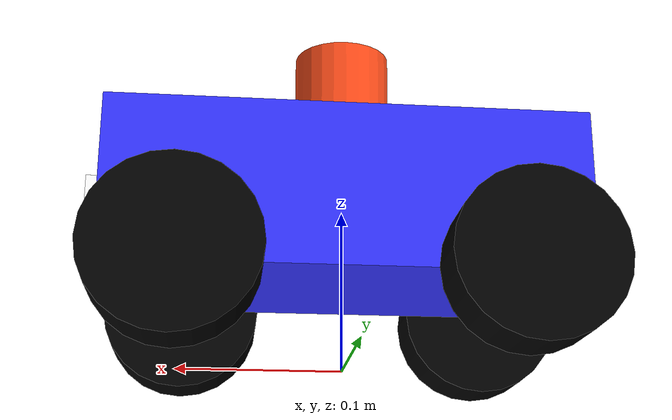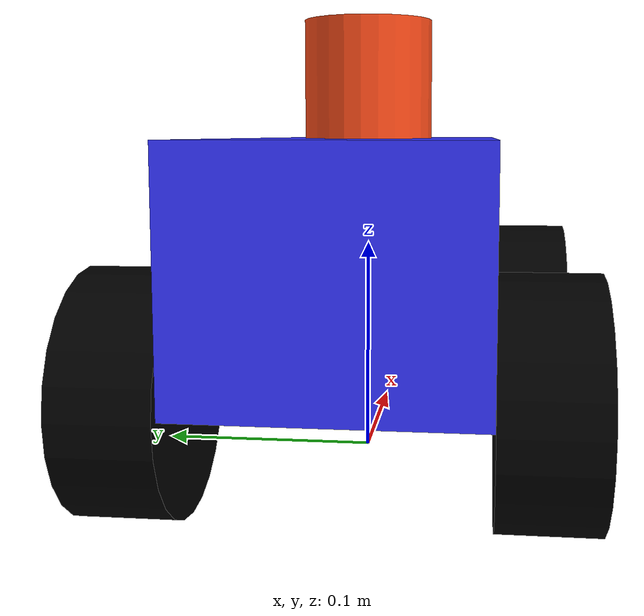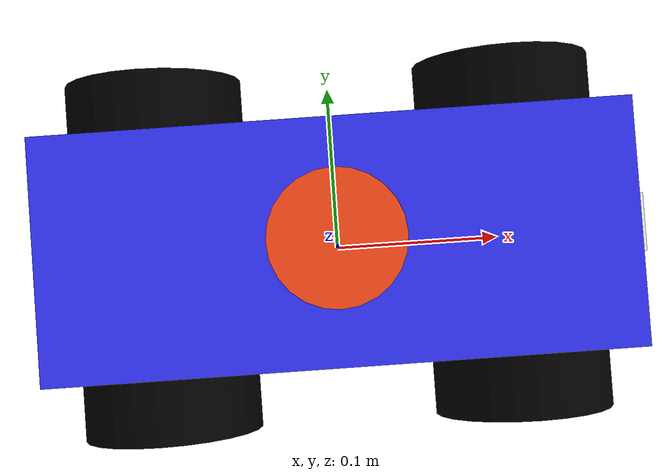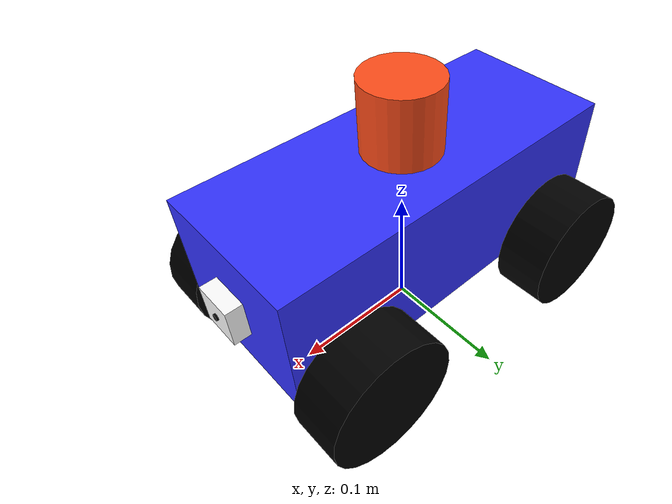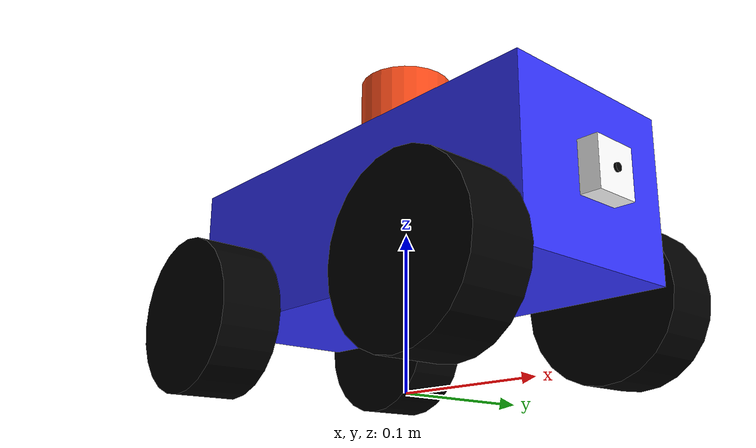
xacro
<?xml version="1.0"?>
<robot name="oskar" xmlns:xacro="http://www.ros.org/wiki/xacro" >

<!-- Ros2_control-->

    <xacro:include filename="colours.xacro" />
    <xacro:include filename="params.xacro" />
    <xacro:include filename="macros.xacro" />
    <xacro:include filename="gazebo.xacro"/>

    <!-- Core Robot Description -->

    <!-- Base Link -->
    <link name="base_link" >
        <visual>
            <geometry>
                <!--mesh filename="$(find oskar_bringup)/meshes/box.dae" /-->
                <box size="0.29 0.12 0.10" />
            </geometry>
            <origin xyz="0 0 0.05" rpy="0 0 0" />
            <material name="blue" />
        </visual>
        <collision>
            <geometry>
                <box size="0.29 0.12 0.10" />
            </geometry>
            <origin xyz="0 0 0.05" rpy="0 0 0" />
        </collision>
        <xacro:default_inertial mass="${base_mass}"/>
    </link>

    <!-- Base Footprint -->
    <link name="base_footprint" />

    <joint name="base_link_joint" type="fixed">
        <parent link="base_footprint"/>
        <child link="base_link"/>
        <origin xyz="0 0 0.05" rpy="0 0 0"/>
    </joint>

<!-- Right Front Wheel Link-->

    <xacro:wheel_link wheel_link_name="left_front_wheel_link"/>

    <joint name="base_left_front_wheel_joint" type="continuous">
        <parent link="base_link"/>
        <child link="left_front_wheel_link"/>
        <origin xyz="0.10 0.08 0" rpy="0 0 0" />
        <axis xyz="0.0 1 0.0"/>
    </joint>

<!-- Right Front Wheel Link-->

    <xacro:wheel_link wheel_link_name="right_front_wheel_link"/>

    <joint name="base_right_front_wheel_joint" type="continuous">
        <parent link="base_link"/>
        <child link="right_front_wheel_link"/>
        <origin xyz="0.10 -0.08 0" rpy="0 0 0" />
        <axis xyz="0.0 1 0.0"/>
    </joint>

<!-- Left Back Wheel Link-->

    <xacro:wheel_link wheel_link_name="left_back_wheel_link"/>

    <joint name="base_left_back_wheel_joint" type="continuous">
        <parent link="base_link"/>
        <child link="left_back_wheel_link"/>
        <origin xyz="-0.10 0.08 0" rpy="0 0 0" />
        <axis xyz="0.0 1 0.0"/>
    </joint>

<!-- Right Back Wheel Link-->

    <xacro:wheel_link wheel_link_name="right_back_wheel_link"/>
1 0 0"
    <joint name="base_right_back_wheel_joint" type="continuous">
        <parent link="base_link"/>
        <child link="right_back_wheel_link"/>
        <origin xyz="-0.10 -0.08 0" rpy="0 0 0" />
        <axis xyz="0.0 1 0.0"/>
    </joint>

    <!-- Sensor Descriptions -->

    <!-- Lidar Link -->

    <xacro:include filename="lidar.xacro" />

    <!-- Camera Link -->

    <xacro:include filename="camera.xacro" />

</robot>

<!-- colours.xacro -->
<robot xmlns:xacro="http://www.ros.org/wiki/xacro" name="oskar">

<!-- Colour file -->

    <material name="white">
        <color rgba="1 1 1 1" />
    </material>

    <material name="orange">
        <color rgba="1 0.3 0.1 1" />
    </material>

    <material name="blue">
        <color rgba="0.2 0.2 1 1" />
    </material>

    <material name="black">
        <color rgba="0 0 0 1" />
    </material>

</robot>

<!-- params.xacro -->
<robot xmlns:xacro="http://www.ros.org/wiki/xacro" name="oskar">

<!-- Parameters file -->

    <!-- Mass Values -->

    <xacro:property name="base_mass" value="2.368"/>
    <xacro:property name="wheel_mass" value="0.060"/>
    <xacro:property name="lidar_mass" value="0.170"/>
    <xacro:property name="camera_mass" value="0.040"/>

    <!-- General Values -->

    <xacro:property name="PI" value="3.14159"/>
    <xacro:property name="HPI" value="1.57079"/>

    <!-- Wheel Values -->

    <xacro:property name="wheel_radius" value="0.05"/>
    <xacro:property name="wheel_width" value="0.04"/>

</robot>

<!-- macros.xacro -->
<robot xmlns:xacro="http://www.ros.org/wiki/xacro" name="oskar">

<!-- Macros file -->

    <!-- Set Inertial Tags -->

    <xacro:macro name="default_inertial" params="mass">
        <inertial>
            <mass value="${mass}" />
            <inertia ixx="1e-3" ixy="0.0" ixz="0.0"
                 iyy="1e-3" iyz="0.0"
                 izz="1e-3" />
        </inertial>
    </xacro:macro>

    <!-- Full Wheel Macro -->

    <xacro:macro name="wheel_link" params="wheel_link_name">
        <link name="${wheel_link_name}">
            <visual>
                <geometry>
                    <cylinder radius="0.05" length="0.04"/>
                </geometry>
                <origin xyz="0 0 0" rpy="1.57 0 0" />
                <material name="black" />
            </visual>
            <collision>
                <geometry>
                    <cylinder radius="${wheel_radius}" length="${wheel_width}"/>
                </geometry>
                <origin xyz="0 0 0" rpy="1.57 0 0" />
            </collision>
            <inertial>
                <mass value="${wheel_mass}" />
            <inertia ixx="1e-3" ixy="0.0" ixz="0.0"
                 iyy="1e-3" iyz="0.0"
                 izz="1e-3" />
            </inertial>
    </link>
    </xacro:macro>

</robot>

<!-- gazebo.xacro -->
<robot xmlns:xacro="http://www.ros.org/wiki/xacro">

  <gazebo>
        <plugin name="gz::sim::systems::DiffDrive" filename="gz-sim-diff-drive-system">

            <!-- Wheel Information -->
            <left_joint>base_left_front_wheel_joint</left_joint>
            <right_joint>base_right_front_wheel_joint</right_joint>
            <left_joint>base_left_back_wheel_joint</left_joint>
            <right_joint>base_right_back_wheel_joint</right_joint>
            <wheel_separation>0.160</wheel_separation>
            <wheel_radius>0.050</wheel_radius>

            <!-- Limits -->
            <max_linear_acceleration>10</max_linear_acceleration>

            <!-- Input -->
            <topic>cmd_vel</topic>

            <!-- Output -->
            <frame_id>odom</frame_id>
            <child_frame_id>base_footprint</child_frame_id>
            <odom_topic>odom</odom_topic>
            <odom_publisher_frequency>100</odom_publisher_frequency>

            <tf_topic>/tf</tf_topic>

        </plugin>

        <plugin filename="gz-sim-joint-state-publisher-system" name="gz::sim::systems::JointStatePublisher">
            <topic>joint_states</topic>
            <joint_name>base_left_front_wheel_joint</joint_name>
            <joint_name>base_right_front_wheel_joint</joint_name>
            <joint_name>base_left_back_wheel_joint</joint_name>
            <joint_name>base_right_back_wheel_joint</joint_name>
        </plugin>
    </gazebo>

    <gazebo>
        <plugin filename="gz-sim-sensors-system" name="gz::sim::systems::Sensors"></plugin>
    </gazebo>

    <gazebo reference="lidar_link">
        <sensor name="laser" type="gpu_lidar">
            <pose> 0 0 0 0 0 0 </pose>
            <visualize>true</visualize>
            <update_rate>10</update_rate>
            <topic>scan</topic>
            <lidar>
                <scan>
                    <horizontal>
                        <samples>720</samples>
                        <min_angle>-3.14</min_angle>
                        <max_angle>3.14</max_angle>
                    </horizontal>
                </scan>
                <range>
                    <min>0.3</min>
                    <max>12</max>
                </range>
            </lidar>

            <gz_frame_id>base_link</gz_frame_id>
        </sensor>
    </gazebo>

    <joint name="camera_optical_joint" type="fixed">
        <parent link="camera_lens_link" />
        <child link="camera_link_optical" />
        <origin xyz="0 0 0" rpy="-1.57 0 1.57" />
    </joint>

    <link name="camera_link_optical"></link>

    <gazebo reference="camera_link">
        <sensor name="camera" type="camera">
            <always_on>true</always_on>
            <pose> 0 0 0 0 0 0 </pose>
            <visualize>true</visualize>
            <update_rate>10</update_rate>
            <horizontal_fov>1.089</horizontal_fov>
                <image>
                    <format>R8G8B8</format>
                    <width>640</width>
                    <height>480</height>
                </image>
                <clip>
                    <near>0.05</near>
                    <far>8.0</far>
                </clip>
            <camera name="camera">
                <camera_info_topic>camera/camera/info</camera_info_topic>
            </camera>
            <topic>camera/image_raw</topic>
            <gz_frame_id>camera_link_optical</gz_frame_id>

        </sensor>
    </gazebo>

   <gazebo reference="base_link">
        <mu1>1.0</mu1>
        <mu2>1.0</mu2>
    </gazebo>

    <gazebo reference="right_front_wheel_link">
        <mu1>0.2</mu1>
        <mu2>0.2</mu2>
    </gazebo>

    <gazebo reference="left_front_wheel_wheel">
        <mu1>0.2</mu1>
        <mu2>0.2</mu2>
    </gazebo>

    <gazebo reference="right_back_wheel_link">
        <mu1>0.2</mu1>
        <mu2>0.2</mu2>
    </gazebo>

    <gazebo reference="left_back_wheel_link">
        <mu1>0.2</mu1>
        <mu2>0.2</mu2>
    </gazebo>

</robot>

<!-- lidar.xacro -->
<robot xmlns:xacro="http://www.ros.org/wiki/xacro" name="oskar">

<!-- Lidar urdf file -->

    <!-- Lidar Description -->

    <link name="lidar_link">
        <visual>
            <geometry>
                <cylinder radius="0.03" length="0.07"/>
            </geometry>
            <origin xyz="0 0 0" rpy="0 0 0" />
            <material name="orange" />
        </visual>
        <collision>
            <geometry>
                <cylinder radius="0.03" length="0.07"/>
            </geometry>
            <origin xyz="0 0 0" rpy="0 0 0" />
        </collision>
        <inertial>
            <mass value="${lidar_mass}"/>
            <inertia ixx="1e-3" ixy="0.0" ixz="0.0" iyy="1e-3" iyz="0.0" izz="1e-3"/>
        </inertial>

    </link>

    <joint name="base_lidar_joint" type="fixed">
        <parent link="base_link"/>
        <child link="lidar_link"/>
        <origin xyz="0 0 0.12" rpy="0 0 0" />
    </joint>

</robot>

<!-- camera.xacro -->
<robot xmlns:xacro="http://www.ros.org/wiki/xacro" name="oskar">

<!-- Camera urdf file -->

    <xacro:include filename="params.xacro" />

    <!-- Camera Description -->

    <link name="camera_link">
        <visual>
            <geometry>
                <box size="0.025 0.03 0.03"/>
            </geometry>
            <origin xyz="0 0 0" rpy="0 0 0" />
            <material name="white"/>
        </visual>
        <collision>
            <geometry>
                <box size="0.025 0.03 0.03"/>
            </geometry>
            <origin xyz="0 0 0" rpy="0 0 0" />
        </collision>
        <xacro:default_inertial mass="${camera_mass}"/>
    </link>

    <joint name="base_camera_joint" type="fixed">
        <parent link="base_link"/>
        <child link="camera_link"/>
        <origin xyz="0.145 0 0.05" rpy="0 0 0"/>
    </joint>

    <link name="camera_lens_link">
        <visual>
            <geometry>
                <cylinder radius="0.0025" length="0.003"/>
            </geometry>
            <origin xyz="0 0 0" rpy="0 1.57 0" />
            <material name="black"/>
        </visual>
        <collision>
             <geometry>
                <cylinder radius="0.0025" length="0.003"/>
            </geometry>
            <origin xyz="0 0 0" rpy="0 1.57 0" />
        </collision>
    </link>

    <joint name="camera_camera_lens_joint" type="fixed">
        <parent link="camera_link"/>
        <child link="camera_lens_link"/>
        <origin xyz="0.0125 0 0" rpy="0 0 0"/>
    </joint>

</robot>
